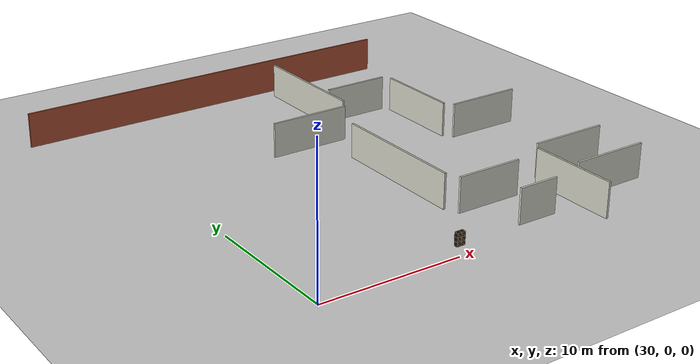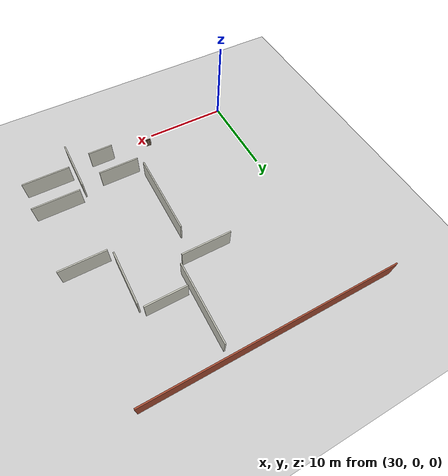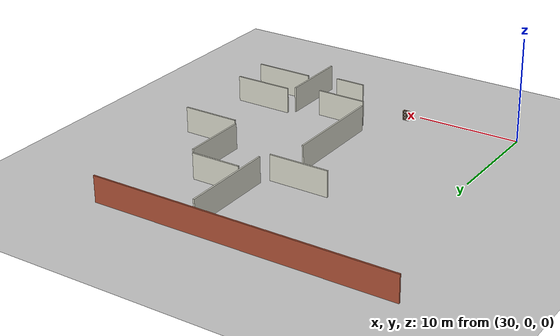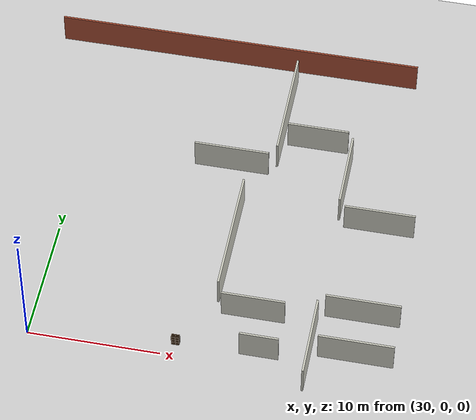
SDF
<sdf version="1.7">
 <world name="default">
  <model name="ground_plane">
   <static>1</static>
   <link name="link">
    <collision name="collision">
     <geometry><plane><normal>0 0 1</normal><size>100 100</size></plane></geometry>
     <surface><friction><ode><mu>100</mu><mu2>50</mu2></ode></friction></surface>
    </collision>
    <visual name="visual">
     <cast_shadows>0</cast_shadows>
     <geometry><plane><normal>0 0 1</normal><size>100 100</size></plane></geometry>
     <material>
      <ambient>1 1 1 1</ambient>
      <diffuse>0.8 0.8 0.8 1</diffuse>
      <specular>0.01 0.01 0.01 1</specular>
     </material>
    </visual>
   </link>
  </model>
  <model name="floorPlan">
   <pose>6.7155 -5.3556 0 0 -0 0</pose>
   <link name="Wall_246">
    <collision name="Wall_246_Collision">
     <geometry><box><size>5.62 0.15 2.5</size></box></geometry>
     <pose>0 0 1.25 0 -0 0</pose>
    </collision>
    <visual name="Wall_246_Visual">
     <pose>0 0 1.25 0 -0 0</pose>
     <geometry><box><size>5.62 0.15 2.5</size></box></geometry>
     <material>
      <script><uri>file://media/materials/scripts/gazebo.material</uri><name>Gazebo/PaintedWall</name></script>
      <ambient>1 1 1 1</ambient>
     </material>
     <meta><layer>0</layer></meta>
    </visual>
    <pose>47.426 7.42213 0 0 -0 0</pose>
   </link>
   <link name="Wall_57">
    <collision name="Wall_57_Collision">
     <geometry><box><size>10 0.15 2.5</size></box></geometry>
     <pose>0 0 1.25 0 -0 0</pose>
    </collision>
    <visual name="Wall_57_Visual">
     <pose>0 0 1.25 0 -0 0</pose>
     <geometry><box><size>10 0.15 2.5</size></box></geometry>
     <material>
      <script><uri>file://media/materials/scripts/gazebo.material</uri><name>Gazebo/PaintedWall</name></script>
      <ambient>1 1 1 1</ambient>
     </material>
     <meta><layer>0</layer></meta>
    </visual>
    <pose>36.5484 15.8208 0 0 -0 1.5708</pose>
   </link>
   <link name="Wall_63">
    <collision name="Wall_63_Collision">
     <geometry><box><size>5.83 0.15 2.5</size></box></geometry>
     <pose>0 0 1.25 0 -0 0</pose>
    </collision>
    <visual name="Wall_63_Visual">
     <pose>0 0 1.25 0 -0 0</pose>
     <geometry><box><size>5.83 0.15 2.5</size></box></geometry>
     <material>
      <script><uri>file://media/materials/scripts/gazebo.material</uri><name>Gazebo/PaintedWall</name></script>
      <ambient>1 1 1 1</ambient>
     </material>
     <meta><layer>0</layer></meta>
    </visual>
    <pose>35.0287 23.7786 0 0 -0 0</pose>
   </link>
   <link name="Wall_64">
    <collision name="Wall_64_Collision">
     <geometry><box><size>9.16 0.15 2.5</size></box></geometry>
     <pose>0 0 1.25 0 -0 0</pose>
    </collision>
    <visual name="Wall_64_Visual">
     <pose>0 0 1.25 0 -0 0</pose>
     <geometry><box><size>9.16 0.15 2.5</size></box></geometry>
     <material>
      <script><uri>file://media/materials/scripts/gazebo.material</uri><name>Gazebo/PaintedWall</name></script>
      <ambient>1 1 1 1</ambient>
     </material>
     <meta><layer>0</layer></meta>
    </visual>
    <pose>38.4537 29.2036 0 0 -0 1.5708</pose>
   </link>
   <link name="Wall_66">
    <collision name="Wall_66_Collision">
     <geometry><box><size>4.79 0.15 2.5</size></box></geometry>
     <pose>0 0 1.25 0 -0 0</pose>
    </collision>
    <visual name="Wall_66_Visual">
     <pose>0 0 1.25 0 -0 0</pose>
     <geometry><box><size>4.79 0.15 2.5</size></box></geometry>
     <material>
      <script><uri>file://media/materials/scripts/gazebo.material</uri><name>Gazebo/PaintedWall</name></script>
      <ambient>1 1 1 1</ambient>
     </material>
     <meta><layer>0</layer></meta>
    </visual>
    <pose>41.2694 27.0754 0 0 -0 0</pose>
   </link>
   <link name="Wall_67">
    <collision name="Wall_67_Collision">
     <geometry><box><size>6.25 0.15 2.5</size></box></geometry>
     <pose>0 0 1.25 0 -0 0</pose>
    </collision>
    <visual name="Wall_67_Visual">
     <pose>0 0 1.25 0 -0 0</pose>
     <geometry><box><size>6.25 0.15 2.5</size></box></geometry>
     <material>
      <script><uri>file://media/materials/scripts/gazebo.material</uri><name>Gazebo/PaintedWall</name></script>
      <ambient>1 1 1 1</ambient>
     </material>
     <meta><layer>0</layer></meta>
    </visual>
    <pose>44.0694 23.4004 0 0 0 -1.5708</pose>
   </link>
   <link name="Wall_68">
    <collision name="Wall_68_Collision">
     <geometry><box><size>5.41 0.15 2.5</size></box></geometry>
     <pose>0 0 1.25 0 -0 0</pose>
    </collision>
    <visual name="Wall_68_Visual">
     <pose>0 0 1.25 0 -0 0</pose>
     <geometry><box><size>5.41 0.15 2.5</size></box></geometry>
     <material>
      <script><uri>file://media/materials/scripts/gazebo.material</uri><name>Gazebo/PaintedWall</name></script>
      <ambient>1 1 1 1</ambient>
     </material>
     <meta><layer>0</layer></meta>
    </visual>
    <pose>47.2444 19.7254 0 0 -0 0</pose>
   </link>
   <link name="Wall_70">
    <collision name="Wall_70_Collision">
     <geometry><box><size>4.79 0.15 2.5</size></box></geometry>
     <pose>0 0 1.25 0 -0 0</pose>
    </collision>
    <visual name="Wall_70_Visual">
     <pose>0 0 1.25 0 -0 0</pose>
     <geometry><box><size>4.79 0.15 2.5</size></box></geometry>
     <material>
      <script><uri>file://media/materials/scripts/gazebo.material</uri><name>Gazebo/PaintedWall</name></script>
      <ambient>1 1 1 1</ambient>
     </material>
     <meta><layer>0</layer></meta>
    </visual>
    <pose>39.3484 9.89578 0 0 -0 0</pose>
   </link>
   <link name="Wall_72">
    <collision name="Wall_72_Collision">
     <geometry><box><size>5.62 0.15 2.5</size></box></geometry>
     <pose>0 0 1.25 0 -0 0</pose>
    </collision>
    <visual name="Wall_72_Visual">
     <pose>0 0 1.25 0 -0 0</pose>
     <geometry><box><size>5.62 0.15 2.5</size></box></geometry>
     <material>
      <script><uri>file://media/materials/scripts/gazebo.material</uri><name>Gazebo/PaintedWall</name></script>
      <ambient>1 1 1 1</ambient>
     </material>
     <meta><layer>0</layer></meta>
    </visual>
    <pose>47.3585 11.1359 0 0 -0 3.14159</pose>
   </link>
   <link name="Wall_73">
    <collision name="Wall_73_Collision">
     <geometry><box><size>6.46 0.15 2.5</size></box></geometry>
     <pose>0 0 1.25 0 -0 0</pose>
    </collision>
    <visual name="Wall_73_Visual">
     <pose>0 0 1.25 0 -0 0</pose>
     <geometry><box><size>6.46 0.15 2.5</size></box></geometry>
     <material>
      <script><uri>file://media/materials/scripts/gazebo.material</uri><name>Gazebo/PaintedWall</name></script>
      <ambient>1 1 1 1</ambient>
     </material>
     <meta><layer>0</layer></meta>
    </visual>
    <pose>44.0585 7.33585 0 0 0 -1.5708</pose>
   </link>
   <link name="Wall_76">
    <collision name="Wall_76_Collision">
     <geometry><box><size>2.92 0.15 2.5</size></box></geometry>
     <pose>0 0 1.25 0 -0 0</pose>
    </collision>
    <visual name="Wall_76_Visual">
     <pose>0 0 1.25 0 -0 0</pose>
     <geometry><box><size>2.92 0.15 2.5</size></box></geometry>
     <material>
      <script><uri>file://media/materials/scripts/gazebo.material</uri><name>Gazebo/PaintedWall</name></script>
      <ambient>1 1 1 1</ambient>
     </material>
     <meta><layer>0</layer></meta>
    </visual>
    <pose>40.4167 6.5385 0 0 -0 0</pose>
   </link>
   <link name="Wall_87">
    <collision name="Wall_87_Collision">
     <geometry><box><size>28.95 0.15 2.5</size></box></geometry>
     <pose>0 0 1.25 0 -0 0</pose>
    </collision>
    <visual name="Wall_87_Visual">
     <pose>0 0 1.25 0 -0 0</pose>
     <geometry><box><size>28.95 0.15 2.5</size></box></geometry>
     <material>
      <script><uri>file://media/materials/scripts/gazebo.material</uri><name>Gazebo/Bricks</name></script>
      <ambient>1 1 1 1</ambient>
     </material>
     <meta><layer>0</layer></meta>
    </visual>
    <pose>33.4718 34.8644 0 0 -0 0</pose>
   </link>
   <static>1</static>
  </model>
  <model name="6_Cube_StorageE_1">
   <link name="Wall_0">
    <pose>0 0 0.01 0 -0 0</pose>
    <inertial>
     <mass>1.6201</mass>
     <inertia><ixx>0.0119</ixx><iyy>0.0631</iyy><izz>0.0513</izz><ixy>0</ixy><ixz>0</ixz><iyz>0</iyz></inertia>
    </inertial>
    <collision name="Wall_0_Collision"><geometry><box><size>0.616 0.296 0.02</size></box></geometry></collision>
    <visual name="Wall_0_Visual">
     <geometry><box><size>0.616 0.296 0.02</size></box></geometry>
     <material>
      <script><uri>file://media/materials/scripts/gazebo.material</uri><name>Gazebo/Grey</name></script>
      <ambient>0.105882 0.0509804 0 1</ambient>
     </material>
    </visual>
   </link>
   <joint name="0_2" type="fixed">
    <pose>-0.308 0 0 0 -0 0</pose>
    <parent>Wall_2</parent>
    <child>Wall_0</child>
    <axis><xyz>1 0 0</xyz><limit><lower>-1e+16</lower><upper>1e+16</upper></limit></axis>
   </joint>
   <joint name="0_12" type="fixed">
    <parent>Wall_12</parent>
    <child>Wall_0</child>
    <axis><xyz>0 0 1</xyz><limit><lower>-1e+16</lower><upper>1e+16</upper></limit></axis>
   </joint>
   <joint name="0_4" type="fixed">
    <pose>0.308 0 0 0 -0 0</pose>
    <parent>Wall_4</parent>
    <child>Wall_0</child>
    <axis><xyz>1 0 0</xyz><limit><lower>-1e+16</lower><upper>1e+16</upper></limit></axis>
   </joint>
   <link name="Wall_10">
    <pose>0 0 0.61 0 -0 0</pose>
    <inertial>
     <mass>1.6201</mass>
     <inertia><ixx>0.0119</ixx><iyy>0.0631</iyy><izz>0.0513</izz><ixy>0</ixy><ixz>0</ixz><iyz>0</iyz></inertia>
    </inertial>
    <collision name="Wall_10_Collision"><geometry><box><size>0.616 0.296 0.02</size></box></geometry></collision>
    <visual name="Wall_10_Visual">
     <geometry><box><size>0.616 0.296 0.02</size></box></geometry>
     <material>
      <script><uri>file://media/materials/scripts/gazebo.material</uri><name>Gazebo/Grey</name></script>
      <ambient>0.105882 0.0509804 0 1</ambient>
     </material>
    </visual>
   </link>
   <joint name="10_2" type="fixed">
    <pose>-0.308 0 0 0 -0 0</pose>
    <parent>Wall_2</parent>
    <child>Wall_10</child>
    <axis><xyz>1 0 0</xyz><limit><lower>-1e+16</lower><upper>1e+16</upper></limit></axis>
   </joint>
   <joint name="10_12" type="fixed">
    <parent>Wall_12</parent>
    <child>Wall_10</child>
    <axis><xyz>0 0 1</xyz><limit><lower>-1e+16</lower><upper>1e+16</upper></limit></axis>
   </joint>
   <joint name="10_4" type="fixed">
    <pose>0.308 0 0 0 -0 0</pose>
    <parent>Wall_4</parent>
    <child>Wall_10</child>
    <axis><xyz>1 0 0</xyz><limit><lower>-1e+16</lower><upper>1e+16</upper></limit></axis>
   </joint>
   <link name="Wall_12">
    <pose>0 0 0.4575 0 -0 0</pose>
    <inertial>
     <mass>2.4065</mass>
     <inertia><ixx>0.0177</ixx><iyy>0.1855</iyy><izz>0.168</izz><ixy>0</ixy><ixz>0</ixz><iyz>0</iyz></inertia>
    </inertial>
    <collision name="Wall_12_Collision"><geometry><box><size>0.02 0.296 0.915</size></box></geometry></collision>
    <visual name="Wall_12_Visual">
     <geometry><box><size>0.02 0.296 0.915</size></box></geometry>
     <material>
      <script><uri>file://media/materials/scripts/gazebo.material</uri><name>Gazebo/Grey</name></script>
      <ambient>0.105882 0.0509804 0 1</ambient>
     </material>
    </visual>
   </link>
   <link name="Wall_2">
    <pose>-0.298 0 0.4575 0 -0 0</pose>
    <inertial>
     <mass>2.4065</mass>
     <inertia><ixx>0.0177</ixx><iyy>0.1855</iyy><izz>0.168</izz><ixy>0</ixy><ixz>0</ixz><iyz>0</iyz></inertia>
    </inertial>
    <collision name="Wall_2_Collision"><geometry><box><size>0.02 0.296 0.915</size></box></geometry></collision>
    <visual name="Wall_2_Visual">
     <geometry><box><size>0.02 0.296 0.915</size></box></geometry>
     <material>
      <script><uri>file://media/materials/scripts/gazebo.material</uri><name>Gazebo/Grey</name></script>
      <ambient>0.105882 0.0509804 0 1</ambient>
     </material>
    </visual>
   </link>
   <link name="Wall_4">
    <pose>0.298 0 0.4575 0 -0 0</pose>
    <inertial>
     <mass>2.4065</mass>
     <inertia><ixx>0.0177</ixx><iyy>0.1855</iyy><izz>0.168</izz><ixy>0</ixy><ixz>0</ixz><iyz>0</iyz></inertia>
    </inertial>
    <collision name="Wall_4_Collision"><geometry><box><size>0.02 0.296 0.915</size></box></geometry></collision>
    <visual name="Wall_4_Visual">
     <geometry><box><size>0.02 0.296 0.915</size></box></geometry>
     <material>
      <script><uri>file://media/materials/scripts/gazebo.material</uri><name>Gazebo/Grey</name></script>
      <ambient>0.105882 0.0509804 0 1</ambient>
     </material>
    </visual>
   </link>
   <link name="Wall_6">
    <pose>0 0 0.905 0 -0 0</pose>
    <inertial>
     <mass>1.6201</mass>
     <inertia><ixx>0.0119</ixx><iyy>0.0631</iyy><izz>0.0513</izz><ixy>0</ixy><ixz>0</ixz><iyz>0</iyz></inertia>
    </inertial>
    <collision name="Wall_6_Collision"><geometry><box><size>0.616 0.296 0.02</size></box></geometry></collision>
    <visual name="Wall_6_Visual">
     <geometry><box><size>0.616 0.296 0.02</size></box></geometry>
     <material>
      <script><uri>file://media/materials/scripts/gazebo.material</uri><name>Gazebo/Grey</name></script>
      <ambient>0.105882 0.0509804 0 1</ambient>
     </material>
    </visual>
   </link>
   <joint name="6_2" type="fixed">
    <pose>-0.308 0 0 0 -0 0</pose>
    <parent>Wall_2</parent>
    <child>Wall_6</child>
    <axis><xyz>2 0 0</xyz><limit><lower>-1e+16</lower><upper>1e+16</upper></limit></axis>
   </joint>
   <joint name="6_12" type="fixed">
    <parent>Wall_12</parent>
    <child>Wall_6</child>
    <axis><xyz>0 0 1</xyz><limit><lower>-1e+16</lower><upper>1e+16</upper></limit></axis>
   </joint>
   <joint name="6_4" type="fixed">
    <pose>0.308 0 0 0 -0 0</pose>
    <parent>Wall_4</parent>
    <child>Wall_6</child>
    <axis><xyz>1 0 0</xyz><limit><lower>-1e+16</lower><upper>1e+16</upper></limit></axis>
   </joint>
   <link name="Wall_8">
    <pose>0 0 0.305 0 -0 0</pose>
    <inertial>
     <mass>1.6201</mass>
     <inertia><ixx>0.0119</ixx><iyy>0.0631</iyy><izz>0.0513</izz><ixy>0</ixy><ixz>0</ixz><iyz>0</iyz></inertia>
    </inertial>
    <collision name="Wall_8_Collision"><geometry><box><size>0.616 0.296 0.02</size></box></geometry></collision>
    <visual name="Wall_8_Visual">
     <geometry><box><size>0.616 0.296 0.02</size></box></geometry>
     <material>
      <script><uri>file://media/materials/scripts/gazebo.material</uri><name>Gazebo/Grey</name></script>
      <ambient>0.105882 0.0509804 0 1</ambient>
     </material>
    </visual>
   </link>
   <joint name="8_2" type="fixed">
    <pose>-0.308 0 0 0 -0 0</pose>
    <parent>Wall_2</parent>
    <child>Wall_8</child>
    <axis><xyz>1 0 0</xyz><limit><lower>-1e+16</lower><upper>1e+16</upper></limit></axis>
   </joint>
   <joint name="8_12" type="fixed">
    <parent>Wall_12</parent>
    <child>Wall_8</child>
    <axis><xyz>0 0 1</xyz><limit><lower>-1e+16</lower><upper>1e+16</upper></limit></axis>
   </joint>
   <joint name="8_4" type="fixed">
    <pose>0.308 0 0 0 -0 0</pose>
    <parent>Wall_4</parent>
    <child>Wall_8</child>
    <axis><xyz>1 0 0</xyz><limit><lower>-1e+16</lower><upper>1e+16</upper></limit></axis>
   </joint>
   <static>1</static>
   <pose>40.9279 1.14104 0 0 -0 0</pose>
  </model>
 </world>
</sdf>
